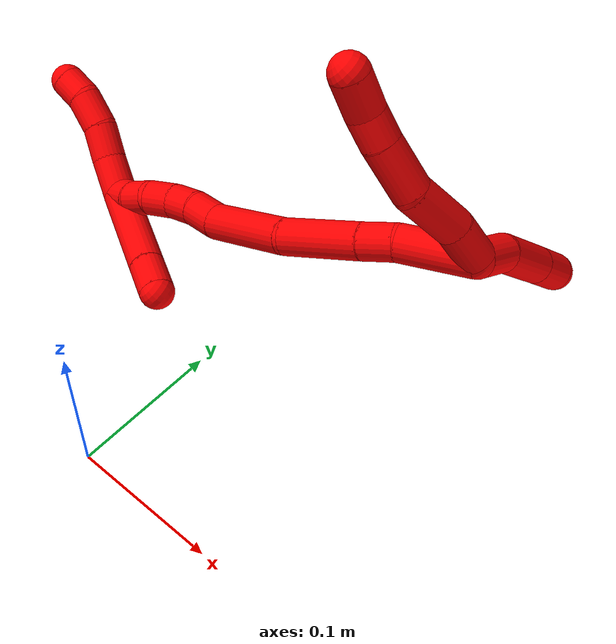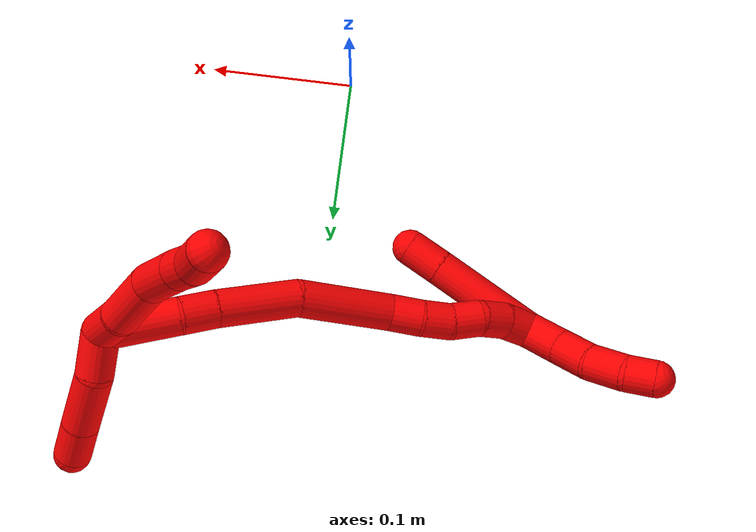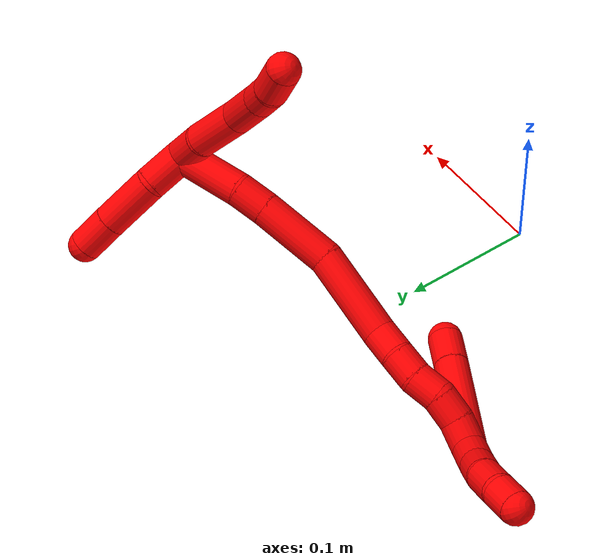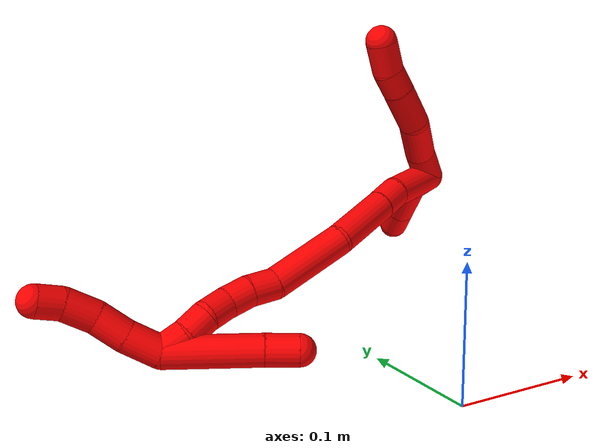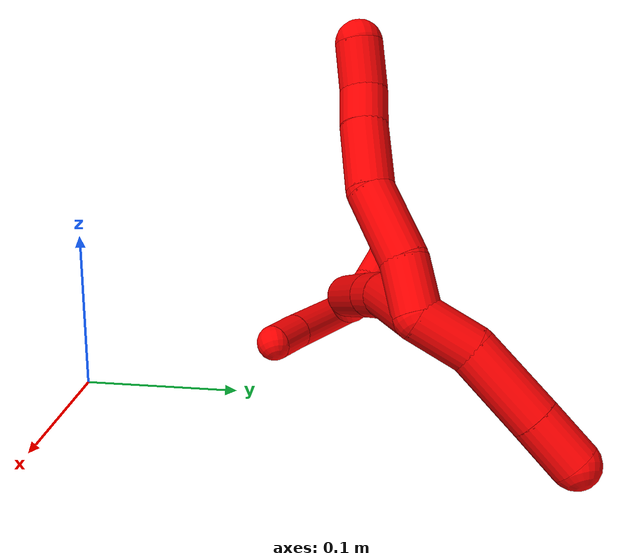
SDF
<sdf version="1.7">
 <world name="default">
  <model name="2">
   <static>0</static>
   <link name="2">
    <collision name="collision-cylinder-e_1_2_8">
     <pose>0.002032 -0.00251 -0.013766 2.96122 0.144218 1.34796</pose>
     <geometry><cylinder><radius>0.0125</radius><length>0.028279</length></cylinder></geometry>
     <surface>
      <friction><ode><mu>1.16</mu><mu2>1.16</mu2><slip1>0</slip1><slip2>0</slip2></ode></friction>
      <contact><ode><kp>1e+06</kp><kd>1</kd><max_vel>0</max_vel><min_depth>0.001</min_depth></ode></contact>
     </surface>
    </collision>
    <visual name="visual-cylinder-e_1_2_8">
     <pose>0.002032 -0.00251 -0.013766 2.96122 0.144218 1.34796</pose>
     <geometry><cylinder><radius>0.0125</radius><length>0.028279</length></cylinder></geometry>
     <material><ambient>1 0 0 1</ambient></material>
    </visual>
    <collision name="collision-cylinder-e_2_8_9">
     <pose>0.008774 -0.004752 -0.04711 -3.12786 0.236068 -3.02596</pose>
     <geometry><cylinder><radius>0.0125</radius><length>0.040278</length></cylinder></geometry>
     <surface>
      <friction><ode><mu>1.16</mu><mu2>1.16</mu2><slip1>0</slip1><slip2>0</slip2></ode></friction>
      <contact><ode><kp>1e+06</kp><kd>1</kd><max_vel>0</max_vel><min_depth>0.001</min_depth></ode></contact>
     </surface>
    </collision>
    <visual name="visual-cylinder-e_2_8_9">
     <pose>0.008774 -0.004752 -0.04711 -3.12786 0.236068 -3.02596</pose>
     <geometry><cylinder><radius>0.0125</radius><length>0.040278</length></cylinder></geometry>
     <material><ambient>1 0 0 1</ambient></material>
    </visual>
    <collision name="collision-cylinder-e_3_9_10">
     <pose>0.014202 -0.00874 -0.083916 2.89933 0.040424 0.329122</pose>
     <geometry><cylinder><radius>0.0125</radius><length>0.035521</length></cylinder></geometry>
     <surface>
      <friction><ode><mu>1.16</mu><mu2>1.16</mu2><slip1>0</slip1><slip2>0</slip2></ode></friction>
      <contact><ode><kp>1e+06</kp><kd>1</kd><max_vel>0</max_vel><min_depth>0.001</min_depth></ode></contact>
     </surface>
    </collision>
    <visual name="visual-cylinder-e_3_9_10">
     <pose>0.014202 -0.00874 -0.083916 2.89933 0.040424 0.329122</pose>
     <geometry><cylinder><radius>0.0125</radius><length>0.035521</length></cylinder></geometry>
     <material><ambient>1 0 0 1</ambient></material>
    </visual>
    <collision name="collision-cylinder-e_4_10_11">
     <pose>0.014942 -0.016147 -0.11065 2.82172 0.00223 0.013823</pose>
     <geometry><cylinder><radius>0.0125</radius><length>0.020029</length></cylinder></geometry>
     <surface>
      <friction><ode><mu>1.16</mu><mu2>1.16</mu2><slip1>0</slip1><slip2>0</slip2></ode></friction>
      <contact><ode><kp>1e+06</kp><kd>1</kd><max_vel>0</max_vel><min_depth>0.001</min_depth></ode></contact>
     </surface>
    </collision>
    <visual name="visual-cylinder-e_4_10_11">
     <pose>0.014942 -0.016147 -0.11065 2.82172 0.00223 0.013823</pose>
     <geometry><cylinder><radius>0.0125</radius><length>0.020029</length></cylinder></geometry>
     <material><ambient>1 0 0 1</ambient></material>
    </visual>
    <collision name="collision-cylinder-e_5_11_6">
     <pose>0.017783 -0.024085 -0.13185 2.75289 0.219469 1.02059</pose>
     <geometry><cylinder><radius>0.0125</radius><length>0.025893</length></cylinder></geometry>
     <surface>
      <friction><ode><mu>1.16</mu><mu2>1.16</mu2><slip1>0</slip1><slip2>0</slip2></ode></friction>
      <contact><ode><kp>1e+06</kp><kd>1</kd><max_vel>0</max_vel><min_depth>0.001</min_depth></ode></contact>
     </surface>
    </collision>
    <visual name="visual-cylinder-e_5_11_6">
     <pose>0.017783 -0.024085 -0.13185 2.75289 0.219469 1.02059</pose>
     <geometry><cylinder><radius>0.0125</radius><length>0.025893</length></cylinder></geometry>
     <material><ambient>1 0 0 1</ambient></material>
    </visual>
    <collision name="collision-cylinder-e_1_2_12">
     <pose>-0.010221 -0.005365 0.009618 0.508796 -0.748149 -0.203451</pose>
     <geometry><cylinder><radius>0.0125</radius><length>0.03005</length></cylinder></geometry>
     <surface>
      <friction><ode><mu>1.16</mu><mu2>1.16</mu2><slip1>0</slip1><slip2>0</slip2></ode></friction>
      <contact><ode><kp>1e+06</kp><kd>1</kd><max_vel>0</max_vel><min_depth>0.001</min_depth></ode></contact>
     </surface>
    </collision>
    <visual name="visual-cylinder-e_1_2_12">
     <pose>-0.010221 -0.005365 0.009618 0.508796 -0.748149 -0.203451</pose>
     <geometry><cylinder><radius>0.0125</radius><length>0.03005</length></cylinder></geometry>
     <material><ambient>1 0 0 1</ambient></material>
    </visual>
    <collision name="collision-cylinder-e_2_12_13">
     <pose>-0.032308 -0.013853 0.036649 0.177503 -0.590749 -0.054139</pose>
     <geometry><cylinder><radius>0.0125</radius><length>0.042605</length></cylinder></geometry>
     <surface>
      <friction><ode><mu>1.16</mu><mu2>1.16</mu2><slip1>0</slip1><slip2>0</slip2></ode></friction>
      <contact><ode><kp>1e+06</kp><kd>1</kd><max_vel>0</max_vel><min_depth>0.001</min_depth></ode></contact>
     </surface>
    </collision>
    <visual name="visual-cylinder-e_2_12_13">
     <pose>-0.032308 -0.013853 0.036649 0.177503 -0.590749 -0.054139</pose>
     <geometry><cylinder><radius>0.0125</radius><length>0.042605</length></cylinder></geometry>
     <material><ambient>1 0 0 1</ambient></material>
    </visual>
    <collision name="collision-cylinder-e_3_13_5">
     <pose>-0.051889 -0.018768 0.065208 0.159372 -0.599649 -0.049363</pose>
     <geometry><cylinder><radius>0.0125</radius><length>0.027345</length></cylinder></geometry>
     <surface>
      <friction><ode><mu>1.16</mu><mu2>1.16</mu2><slip1>0</slip1><slip2>0</slip2></ode></friction>
      <contact><ode><kp>1e+06</kp><kd>1</kd><max_vel>0</max_vel><min_depth>0.001</min_depth></ode></contact>
     </surface>
    </collision>
    <visual name="visual-cylinder-e_3_13_5">
     <pose>-0.051889 -0.018768 0.065208 0.159372 -0.599649 -0.049363</pose>
     <geometry><cylinder><radius>0.0125</radius><length>0.027345</length></cylinder></geometry>
     <material><ambient>1 0 0 1</ambient></material>
    </visual>
    <collision name="collision-cylinder-e_1_2_14">
     <pose>-0.011738 0.014598 -0.016617 -2.4208 -0.487907 1.16744</pose>
     <geometry><cylinder><radius>0.0125</radius><length>0.050081</length></cylinder></geometry>
     <surface>
      <friction><ode><mu>1.16</mu><mu2>1.16</mu2><slip1>0</slip1><slip2>0</slip2></ode></friction>
      <contact><ode><kp>1e+06</kp><kd>1</kd><max_vel>0</max_vel><min_depth>0.001</min_depth></ode></contact>
     </surface>
    </collision>
    <visual name="visual-cylinder-e_1_2_14">
     <pose>-0.011738 0.014598 -0.016617 -2.4208 -0.487907 1.16744</pose>
     <geometry><cylinder><radius>0.0125</radius><length>0.050081</length></cylinder></geometry>
     <material><ambient>1 0 0 1</ambient></material>
    </visual>
    <collision name="collision-cylinder-e_2_14_15">
     <pose>-0.029354 0.037452 -0.039175 -2.19448 -0.523966 0.964169</pose>
     <geometry><cylinder><radius>0.0125</radius><length>0.023493</length></cylinder></geometry>
     <surface>
      <friction><ode><mu>1.16</mu><mu2>1.16</mu2><slip1>0</slip1><slip2>0</slip2></ode></friction>
      <contact><ode><kp>1e+06</kp><kd>1</kd><max_vel>0</max_vel><min_depth>0.001</min_depth></ode></contact>
     </surface>
    </collision>
    <visual name="visual-cylinder-e_2_14_15">
     <pose>-0.029354 0.037452 -0.039175 -2.19448 -0.523966 0.964169</pose>
     <geometry><cylinder><radius>0.0125</radius><length>0.023493</length></cylinder></geometry>
     <material><ambient>1 0 0 1</ambient></material>
    </visual>
    <collision name="collision-cylinder-e_3_15_16">
     <pose>-0.05052 0.064524 -0.058666 -2.19495 -0.582923 1.05978</pose>
     <geometry><cylinder><radius>0.0125</radius><length>0.05555</length></cylinder></geometry>
     <surface>
      <friction><ode><mu>1.16</mu><mu2>1.16</mu2><slip1>0</slip1><slip2>0</slip2></ode></friction>
      <contact><ode><kp>1e+06</kp><kd>1</kd><max_vel>0</max_vel><min_depth>0.001</min_depth></ode></contact>
     </surface>
    </collision>
    <visual name="visual-cylinder-e_3_15_16">
     <pose>-0.05052 0.064524 -0.058666 -2.19495 -0.582923 1.05978</pose>
     <geometry><cylinder><radius>0.0125</radius><length>0.05555</length></cylinder></geometry>
     <material><ambient>1 0 0 1</ambient></material>
    </visual>
    <collision name="collision-cylinder-e_4_16_17">
     <pose>-0.090467 0.100983 -0.084453 -2.17716 -0.854396 1.43166</pose>
     <geometry><cylinder><radius>0.0125</radius><length>0.065391</length></cylinder></geometry>
     <surface>
      <friction><ode><mu>1.16</mu><mu2>1.16</mu2><slip1>0</slip1><slip2>0</slip2></ode></friction>
      <contact><ode><kp>1e+06</kp><kd>1</kd><max_vel>0</max_vel><min_depth>0.001</min_depth></ode></contact>
     </surface>
    </collision>
    <visual name="visual-cylinder-e_4_16_17">
     <pose>-0.090467 0.100983 -0.084453 -2.17716 -0.854396 1.43166</pose>
     <geometry><cylinder><radius>0.0125</radius><length>0.065391</length></cylinder></geometry>
     <material><ambient>1 0 0 1</ambient></material>
    </visual>
    <collision name="collision-cylinder-e_5_17_18">
     <pose>-0.123263 0.122218 -0.103143 -2.63368 -0.833765 2.08127</pose>
     <geometry><cylinder><radius>0.0125</radius><length>0.02198</length></cylinder></geometry>
     <surface>
      <friction><ode><mu>1.16</mu><mu2>1.16</mu2><slip1>0</slip1><slip2>0</slip2></ode></friction>
      <contact><ode><kp>1e+06</kp><kd>1</kd><max_vel>0</max_vel><min_depth>0.001</min_depth></ode></contact>
     </surface>
    </collision>
    <visual name="visual-cylinder-e_5_17_18">
     <pose>-0.123263 0.122218 -0.103143 -2.63368 -0.833765 2.08127</pose>
     <geometry><cylinder><radius>0.0125</radius><length>0.02198</length></cylinder></geometry>
     <material><ambient>1 0 0 1</ambient></material>
    </visual>
    <collision name="collision-cylinder-e_6_18_19">
     <pose>-0.138945 0.130831 -0.114617 -2.35616 -0.815663 1.61291</pose>
     <geometry><cylinder><radius>0.0125</radius><length>0.020719</length></cylinder></geometry>
     <surface>
      <friction><ode><mu>1.16</mu><mu2>1.16</mu2><slip1>0</slip1><slip2>0</slip2></ode></friction>
      <contact><ode><kp>1e+06</kp><kd>1</kd><max_vel>0</max_vel><min_depth>0.001</min_depth></ode></contact>
     </surface>
    </collision>
    <visual name="visual-cylinder-e_6_18_19">
     <pose>-0.138945 0.130831 -0.114617 -2.35616 -0.815663 1.61291</pose>
     <geometry><cylinder><radius>0.0125</radius><length>0.020719</length></cylinder></geometry>
     <material><ambient>1 0 0 1</ambient></material>
    </visual>
    <collision name="collision-cylinder-e_7_19_20">
     <pose>-0.152299 0.142328 -0.125444 -2.30173 -0.588949 1.19337</pose>
     <geometry><cylinder><radius>0.0125</radius><length>0.020921</length></cylinder></geometry>
     <surface>
      <friction><ode><mu>1.16</mu><mu2>1.16</mu2><slip1>0</slip1><slip2>0</slip2></ode></friction>
      <contact><ode><kp>1e+06</kp><kd>1</kd><max_vel>0</max_vel><min_depth>0.001</min_depth></ode></contact>
     </surface>
    </collision>
    <visual name="visual-cylinder-e_7_19_20">
     <pose>-0.152299 0.142328 -0.125444 -2.30173 -0.588949 1.19337</pose>
     <geometry><cylinder><radius>0.0125</radius><length>0.020921</length></cylinder></geometry>
     <material><ambient>1 0 0 1</ambient></material>
    </visual>
    <collision name="collision-cylinder-e_8_20_21">
     <pose>-0.165389 0.155422 -0.133992 -1.96354 -0.793457 1.1201</pose>
     <geometry><cylinder><radius>0.0125</radius><length>0.020426</length></cylinder></geometry>
     <surface>
      <friction><ode><mu>1.16</mu><mu2>1.16</mu2><slip1>0</slip1><slip2>0</slip2></ode></friction>
      <contact><ode><kp>1e+06</kp><kd>1</kd><max_vel>0</max_vel><min_depth>0.001</min_depth></ode></contact>
     </surface>
    </collision>
    <visual name="visual-cylinder-e_8_20_21">
     <pose>-0.165389 0.155422 -0.133992 -1.96354 -0.793457 1.1201</pose>
     <geometry><cylinder><radius>0.0125</radius><length>0.020426</length></cylinder></geometry>
     <material><ambient>1 0 0 1</ambient></material>
    </visual>
    <collision name="collision-cylinder-e_9_21_1">
     <pose>-0.181809 0.167071 -0.139193 -2.02545 -1.02107 1.46248</pose>
     <geometry><cylinder><radius>0.0125</radius><length>0.021438</length></cylinder></geometry>
     <surface>
      <friction><ode><mu>1.16</mu><mu2>1.16</mu2><slip1>0</slip1><slip2>0</slip2></ode></friction>
      <contact><ode><kp>1e+06</kp><kd>1</kd><max_vel>0</max_vel><min_depth>0.001</min_depth></ode></contact>
     </surface>
    </collision>
    <visual name="visual-cylinder-e_9_21_1">
     <pose>-0.181809 0.167071 -0.139193 -2.02545 -1.02107 1.46248</pose>
     <geometry><cylinder><radius>0.0125</radius><length>0.021438</length></cylinder></geometry>
     <material><ambient>1 0 0 1</ambient></material>
    </visual>
    <collision name="collision-cylinder-e_1_1_22">
     <pose>-0.157782 0.175404 -0.124916 -0.194731 1.09575 -0.119059</pose>
     <geometry><cylinder><radius>0.0125</radius><length>0.074594</length></cylinder></geometry>
     <surface>
      <friction><ode><mu>1.16</mu><mu2>1.16</mu2><slip1>0</slip1><slip2>0</slip2></ode></friction>
      <contact><ode><kp>1e+06</kp><kd>1</kd><max_vel>0</max_vel><min_depth>0.001</min_depth></ode></contact>
     </surface>
    </collision>
    <visual name="visual-cylinder-e_1_1_22">
     <pose>-0.157782 0.175404 -0.124916 -0.194731 1.09575 -0.119059</pose>
     <geometry><cylinder><radius>0.0125</radius><length>0.074594</length></cylinder></geometry>
     <material><ambient>1 0 0 1</ambient></material>
    </visual>
    <collision name="collision-cylinder-e_2_22_4">
     <pose>-0.113502 0.180033 -0.102171 -0.217523 1.06508 -0.128524</pose>
     <geometry><cylinder><radius>0.0125</radius><length>0.025406</length></cylinder></geometry>
     <surface>
      <friction><ode><mu>1.16</mu><mu2>1.16</mu2><slip1>0</slip1><slip2>0</slip2></ode></friction>
      <contact><ode><kp>1e+06</kp><kd>1</kd><max_vel>0</max_vel><min_depth>0.001</min_depth></ode></contact>
     </surface>
    </collision>
    <visual name="visual-cylinder-e_2_22_4">
     <pose>-0.113502 0.180033 -0.102171 -0.217523 1.06508 -0.128524</pose>
     <geometry><cylinder><radius>0.0125</radius><length>0.025406</length></cylinder></geometry>
     <material><ambient>1 0 0 1</ambient></material>
    </visual>
    <collision name="collision-cylinder-e_1_1_23">
     <pose>-0.199362 0.167077 -0.151957 2.68783 -0.633089 -1.91375</pose>
     <geometry><cylinder><radius>0.0125</radius><length>0.028441</length></cylinder></geometry>
     <surface>
      <friction><ode><mu>1.16</mu><mu2>1.16</mu2><slip1>0</slip1><slip2>0</slip2></ode></friction>
      <contact><ode><kp>1e+06</kp><kd>1</kd><max_vel>0</max_vel><min_depth>0.001</min_depth></ode></contact>
     </surface>
    </collision>
    <visual name="visual-cylinder-e_1_1_23">
     <pose>-0.199362 0.167077 -0.151957 2.68783 -0.633089 -1.91375</pose>
     <geometry><cylinder><radius>0.0125</radius><length>0.028441</length></cylinder></geometry>
     <material><ambient>1 0 0 1</ambient></material>
    </visual>
    <collision name="collision-cylinder-e_2_23_24">
     <pose>-0.213919 0.156466 -0.171909 2.61677 -0.503658 -1.52777</pose>
     <geometry><cylinder><radius>0.0125</radius><length>0.025456</length></cylinder></geometry>
     <surface>
      <friction><ode><mu>1.16</mu><mu2>1.16</mu2><slip1>0</slip1><slip2>0</slip2></ode></friction>
      <contact><ode><kp>1e+06</kp><kd>1</kd><max_vel>0</max_vel><min_depth>0.001</min_depth></ode></contact>
     </surface>
    </collision>
    <visual name="visual-cylinder-e_2_23_24">
     <pose>-0.213919 0.156466 -0.171909 2.61677 -0.503658 -1.52777</pose>
     <geometry><cylinder><radius>0.0125</radius><length>0.025456</length></cylinder></geometry>
     <material><ambient>1 0 0 1</ambient></material>
    </visual>
    <collision name="collision-cylinder-e_3_24_25">
     <pose>-0.226916 0.14805 -0.192198 2.88167 -0.556731 -2.28372</pose>
     <geometry><cylinder><radius>0.0125</radius><length>0.025941</length></cylinder></geometry>
     <surface>
      <friction><ode><mu>1.16</mu><mu2>1.16</mu2><slip1>0</slip1><slip2>0</slip2></ode></friction>
      <contact><ode><kp>1e+06</kp><kd>1</kd><max_vel>0</max_vel><min_depth>0.001</min_depth></ode></contact>
     </surface>
    </collision>
    <visual name="visual-cylinder-e_3_24_25">
     <pose>-0.226916 0.14805 -0.192198 2.88167 -0.556731 -2.28372</pose>
     <geometry><cylinder><radius>0.0125</radius><length>0.025941</length></cylinder></geometry>
     <material><ambient>1 0 0 1</ambient></material>
    </visual>
    <collision name="collision-cylinder-e_4_25_3">
     <pose>-0.240027 0.145899 -0.210714 -3.05565 -0.669695 2.8957</pose>
     <geometry><cylinder><radius>0.0125</radius><length>0.020161</length></cylinder></geometry>
     <surface>
      <friction><ode><mu>1.16</mu><mu2>1.16</mu2><slip1>0</slip1><slip2>0</slip2></ode></friction>
      <contact><ode><kp>1e+06</kp><kd>1</kd><max_vel>0</max_vel><min_depth>0.001</min_depth></ode></contact>
     </surface>
    </collision>
    <visual name="visual-cylinder-e_4_25_3">
     <pose>-0.240027 0.145899 -0.210714 -3.05565 -0.669695 2.8957</pose>
     <geometry><cylinder><radius>0.0125</radius><length>0.020161</length></cylinder></geometry>
     <material><ambient>1 0 0 1</ambient></material>
    </visual>
    <collision name="collision-sphere-3">
     <pose>-0.246285 0.146577 -0.218588 0 -0 0</pose>
     <geometry><sphere><radius>0.0125</radius></sphere></geometry>
     <surface>
      <friction><ode><mu>1.16</mu><mu2>1.16</mu2><slip1>0</slip1><slip2>0</slip2></ode></friction>
      <contact><ode><kp>1e+06</kp><kd>1</kd><max_vel>0</max_vel><min_depth>0.001</min_depth></ode></contact>
     </surface>
    </collision>
    <visual name="visual-sphere-3">
     <pose>-0.246285 0.146577 -0.218588 0 -0 0</pose>
     <geometry><sphere><radius>0.0125</radius></sphere></geometry>
     <material><ambient>1 0 0 1</ambient></material>
    </visual>
    <collision name="collision-sphere-25">
     <pose>-0.23377 0.14522 -0.20284 0 -0 0</pose>
     <geometry><sphere><radius>0.0125</radius></sphere></geometry>
     <surface>
      <friction><ode><mu>1.16</mu><mu2>1.16</mu2><slip1>0</slip1><slip2>0</slip2></ode></friction>
      <contact><ode><kp>1e+06</kp><kd>1</kd><max_vel>0</max_vel><min_depth>0.001</min_depth></ode></contact>
     </surface>
    </collision>
    <visual name="visual-sphere-25">
     <pose>-0.23377 0.14522 -0.20284 0 -0 0</pose>
     <geometry><sphere><radius>0.0125</radius></sphere></geometry>
     <material><ambient>1 0 0 1</ambient></material>
    </visual>
    <collision name="collision-sphere-24">
     <pose>-0.220062 0.150881 -0.181556 0 -0 0</pose>
     <geometry><sphere><radius>0.0125</radius></sphere></geometry>
     <surface>
      <friction><ode><mu>1.16</mu><mu2>1.16</mu2><slip1>0</slip1><slip2>0</slip2></ode></friction>
      <contact><ode><kp>1e+06</kp><kd>1</kd><max_vel>0</max_vel><min_depth>0.001</min_depth></ode></contact>
     </surface>
    </collision>
    <visual name="visual-sphere-24">
     <pose>-0.220062 0.150881 -0.181556 0 -0 0</pose>
     <geometry><sphere><radius>0.0125</radius></sphere></geometry>
     <material><ambient>1 0 0 1</ambient></material>
    </visual>
    <collision name="collision-sphere-23">
     <pose>-0.207776 0.162052 -0.162262 0 -0 0</pose>
     <geometry><sphere><radius>0.0125</radius></sphere></geometry>
     <surface>
      <friction><ode><mu>1.16</mu><mu2>1.16</mu2><slip1>0</slip1><slip2>0</slip2></ode></friction>
      <contact><ode><kp>1e+06</kp><kd>1</kd><max_vel>0</max_vel><min_depth>0.001</min_depth></ode></contact>
     </surface>
    </collision>
    <visual name="visual-sphere-23">
     <pose>-0.207776 0.162052 -0.162262 0 -0 0</pose>
     <geometry><sphere><radius>0.0125</radius></sphere></geometry>
     <material><ambient>1 0 0 1</ambient></material>
    </visual>
    <collision name="collision-sphere-4">
     <pose>-0.102389 0.181361 -0.096162 0 -0 0</pose>
     <geometry><sphere><radius>0.0125</radius></sphere></geometry>
     <surface>
      <friction><ode><mu>1.16</mu><mu2>1.16</mu2><slip1>0</slip1><slip2>0</slip2></ode></friction>
      <contact><ode><kp>1e+06</kp><kd>1</kd><max_vel>0</max_vel><min_depth>0.001</min_depth></ode></contact>
     </surface>
    </collision>
    <visual name="visual-sphere-4">
     <pose>-0.102389 0.181361 -0.096162 0 -0 0</pose>
     <geometry><sphere><radius>0.0125</radius></sphere></geometry>
     <material><ambient>1 0 0 1</ambient></material>
    </visual>
    <collision name="collision-sphere-22">
     <pose>-0.124615 0.178705 -0.10818 0 -0 0</pose>
     <geometry><sphere><radius>0.0125</radius></sphere></geometry>
     <surface>
      <friction><ode><mu>1.16</mu><mu2>1.16</mu2><slip1>0</slip1><slip2>0</slip2></ode></friction>
      <contact><ode><kp>1e+06</kp><kd>1</kd><max_vel>0</max_vel><min_depth>0.001</min_depth></ode></contact>
     </surface>
    </collision>
    <visual name="visual-sphere-22">
     <pose>-0.124615 0.178705 -0.10818 0 -0 0</pose>
     <geometry><sphere><radius>0.0125</radius></sphere></geometry>
     <material><ambient>1 0 0 1</ambient></material>
    </visual>
    <collision name="collision-sphere-1">
     <pose>-0.190949 0.172103 -0.141653 0 -0 0</pose>
     <geometry><sphere><radius>0.0125</radius></sphere></geometry>
     <surface>
      <friction><ode><mu>1.16</mu><mu2>1.16</mu2><slip1>0</slip1><slip2>0</slip2></ode></friction>
      <contact><ode><kp>1e+06</kp><kd>1</kd><max_vel>0</max_vel><min_depth>0.001</min_depth></ode></contact>
     </surface>
    </collision>
    <visual name="visual-sphere-1">
     <pose>-0.190949 0.172103 -0.141653 0 -0 0</pose>
     <geometry><sphere><radius>0.0125</radius></sphere></geometry>
     <material><ambient>1 0 0 1</ambient></material>
    </visual>
    <collision name="collision-sphere-21">
     <pose>-0.172669 0.16204 -0.136734 0 -0 0</pose>
     <geometry><sphere><radius>0.0125</radius></sphere></geometry>
     <surface>
      <friction><ode><mu>1.16</mu><mu2>1.16</mu2><slip1>0</slip1><slip2>0</slip2></ode></friction>
      <contact><ode><kp>1e+06</kp><kd>1</kd><max_vel>0</max_vel><min_depth>0.001</min_depth></ode></contact>
     </surface>
    </collision>
    <visual name="visual-sphere-21">
     <pose>-0.172669 0.16204 -0.136734 0 -0 0</pose>
     <geometry><sphere><radius>0.0125</radius></sphere></geometry>
     <material><ambient>1 0 0 1</ambient></material>
    </visual>
    <collision name="collision-sphere-6">
     <pose>0.020602 -0.028873 -0.143544 0 -0 0</pose>
     <geometry><sphere><radius>0.0125</radius></sphere></geometry>
     <surface>
      <friction><ode><mu>1.16</mu><mu2>1.16</mu2><slip1>0</slip1><slip2>0</slip2></ode></friction>
      <contact><ode><kp>1e+06</kp><kd>1</kd><max_vel>0</max_vel><min_depth>0.001</min_depth></ode></contact>
     </surface>
    </collision>
    <visual name="visual-sphere-6">
     <pose>0.020602 -0.028873 -0.143544 0 -0 0</pose>
     <geometry><sphere><radius>0.0125</radius></sphere></geometry>
     <material><ambient>1 0 0 1</ambient></material>
    </visual>
    <collision name="collision-sphere-11">
     <pose>0.014965 -0.019296 -0.120157 0 -0 0</pose>
     <geometry><sphere><radius>0.0125</radius></sphere></geometry>
     <surface>
      <friction><ode><mu>1.16</mu><mu2>1.16</mu2><slip1>0</slip1><slip2>0</slip2></ode></friction>
      <contact><ode><kp>1e+06</kp><kd>1</kd><max_vel>0</max_vel><min_depth>0.001</min_depth></ode></contact>
     </surface>
    </collision>
    <visual name="visual-sphere-11">
     <pose>0.014965 -0.019296 -0.120157 0 -0 0</pose>
     <geometry><sphere><radius>0.0125</radius></sphere></geometry>
     <material><ambient>1 0 0 1</ambient></material>
    </visual>
    <collision name="collision-sphere-10">
     <pose>0.01492 -0.012998 -0.101144 0 -0 0</pose>
     <geometry><sphere><radius>0.0125</radius></sphere></geometry>
     <surface>
      <friction><ode><mu>1.16</mu><mu2>1.16</mu2><slip1>0</slip1><slip2>0</slip2></ode></friction>
      <contact><ode><kp>1e+06</kp><kd>1</kd><max_vel>0</max_vel><min_depth>0.001</min_depth></ode></contact>
     </surface>
    </collision>
    <visual name="visual-sphere-10">
     <pose>0.01492 -0.012998 -0.101144 0 -0 0</pose>
     <geometry><sphere><radius>0.0125</radius></sphere></geometry>
     <material><ambient>1 0 0 1</ambient></material>
    </visual>
    <collision name="collision-sphere-9">
     <pose>0.013485 -0.004483 -0.066689 0 -0 0</pose>
     <geometry><sphere><radius>0.0125</radius></sphere></geometry>
     <surface>
      <friction><ode><mu>1.16</mu><mu2>1.16</mu2><slip1>0</slip1><slip2>0</slip2></ode></friction>
      <contact><ode><kp>1e+06</kp><kd>1</kd><max_vel>0</max_vel><min_depth>0.001</min_depth></ode></contact>
     </surface>
    </collision>
    <visual name="visual-sphere-9">
     <pose>0.013485 -0.004483 -0.066689 0 -0 0</pose>
     <geometry><sphere><radius>0.0125</radius></sphere></geometry>
     <material><ambient>1 0 0 1</ambient></material>
    </visual>
    <collision name="collision-sphere-2">
     <geometry><sphere><radius>0.0125</radius></sphere></geometry>
     <surface>
      <friction><ode><mu>1.16</mu><mu2>1.16</mu2><slip1>0</slip1><slip2>0</slip2></ode></friction>
      <contact><ode><kp>1e+06</kp><kd>1</kd><max_vel>0</max_vel><min_depth>0.001</min_depth></ode></contact>
     </surface>
    </collision>
    <visual name="visual-sphere-2">
     <geometry><sphere><radius>0.0125</radius></sphere></geometry>
     <material><ambient>1 0 0 1</ambient></material>
    </visual>
    <collision name="collision-sphere-19">
     <pose>-0.146488 0.135852 -0.119638 0 -0 0</pose>
     <geometry><sphere><radius>0.0125</radius></sphere></geometry>
     <surface>
      <friction><ode><mu>1.16</mu><mu2>1.16</mu2><slip1>0</slip1><slip2>0</slip2></ode></friction>
      <contact><ode><kp>1e+06</kp><kd>1</kd><max_vel>0</max_vel><min_depth>0.001</min_depth></ode></contact>
     </surface>
    </collision>
    <visual name="visual-sphere-19">
     <pose>-0.146488 0.135852 -0.119638 0 -0 0</pose>
     <geometry><sphere><radius>0.0125</radius></sphere></geometry>
     <material><ambient>1 0 0 1</ambient></material>
    </visual>
    <collision name="collision-sphere-8">
     <pose>0.004064 -0.005021 -0.027531 0 -0 0</pose>
     <geometry><sphere><radius>0.0125</radius></sphere></geometry>
     <surface>
      <friction><ode><mu>1.16</mu><mu2>1.16</mu2><slip1>0</slip1><slip2>0</slip2></ode></friction>
      <contact><ode><kp>1e+06</kp><kd>1</kd><max_vel>0</max_vel><min_depth>0.001</min_depth></ode></contact>
     </surface>
    </collision>
    <visual name="visual-sphere-8">
     <pose>0.004064 -0.005021 -0.027531 0 -0 0</pose>
     <geometry><sphere><radius>0.0125</radius></sphere></geometry>
     <material><ambient>1 0 0 1</ambient></material>
    </visual>
    <collision name="collision-sphere-12">
     <pose>-0.020442 -0.010729 0.019235 0 -0 0</pose>
     <geometry><sphere><radius>0.0125</radius></sphere></geometry>
     <surface>
      <friction><ode><mu>1.16</mu><mu2>1.16</mu2><slip1>0</slip1><slip2>0</slip2></ode></friction>
      <contact><ode><kp>1e+06</kp><kd>1</kd><max_vel>0</max_vel><min_depth>0.001</min_depth></ode></contact>
     </surface>
    </collision>
    <visual name="visual-sphere-12">
     <pose>-0.020442 -0.010729 0.019235 0 -0 0</pose>
     <geometry><sphere><radius>0.0125</radius></sphere></geometry>
     <material><ambient>1 0 0 1</ambient></material>
    </visual>
    <collision name="collision-sphere-13">
     <pose>-0.044173 -0.016977 0.054063 0 -0 0</pose>
     <geometry><sphere><radius>0.0125</radius></sphere></geometry>
     <surface>
      <friction><ode><mu>1.16</mu><mu2>1.16</mu2><slip1>0</slip1><slip2>0</slip2></ode></friction>
      <contact><ode><kp>1e+06</kp><kd>1</kd><max_vel>0</max_vel><min_depth>0.001</min_depth></ode></contact>
     </surface>
    </collision>
    <visual name="visual-sphere-13">
     <pose>-0.044173 -0.016977 0.054063 0 -0 0</pose>
     <geometry><sphere><radius>0.0125</radius></sphere></geometry>
     <material><ambient>1 0 0 1</ambient></material>
    </visual>
    <collision name="collision-sphere-5">
     <pose>-0.059605 -0.020559 0.076352 0 -0 0</pose>
     <geometry><sphere><radius>0.0125</radius></sphere></geometry>
     <surface>
      <friction><ode><mu>1.16</mu><mu2>1.16</mu2><slip1>0</slip1><slip2>0</slip2></ode></friction>
      <contact><ode><kp>1e+06</kp><kd>1</kd><max_vel>0</max_vel><min_depth>0.001</min_depth></ode></contact>
     </surface>
    </collision>
    <visual name="visual-sphere-5">
     <pose>-0.059605 -0.020559 0.076352 0 -0 0</pose>
     <geometry><sphere><radius>0.0125</radius></sphere></geometry>
     <material><ambient>1 0 0 1</ambient></material>
    </visual>
    <collision name="collision-sphere-14">
     <pose>-0.023477 0.029196 -0.033235 0 -0 0</pose>
     <geometry><sphere><radius>0.0125</radius></sphere></geometry>
     <surface>
      <friction><ode><mu>1.16</mu><mu2>1.16</mu2><slip1>0</slip1><slip2>0</slip2></ode></friction>
      <contact><ode><kp>1e+06</kp><kd>1</kd><max_vel>0</max_vel><min_depth>0.001</min_depth></ode></contact>
     </surface>
    </collision>
    <visual name="visual-sphere-14">
     <pose>-0.023477 0.029196 -0.033235 0 -0 0</pose>
     <geometry><sphere><radius>0.0125</radius></sphere></geometry>
     <material><ambient>1 0 0 1</ambient></material>
    </visual>
    <collision name="collision-sphere-15">
     <pose>-0.035231 0.045707 -0.045115 0 -0 0</pose>
     <geometry><sphere><radius>0.0125</radius></sphere></geometry>
     <surface>
      <friction><ode><mu>1.16</mu><mu2>1.16</mu2><slip1>0</slip1><slip2>0</slip2></ode></friction>
      <contact><ode><kp>1e+06</kp><kd>1</kd><max_vel>0</max_vel><min_depth>0.001</min_depth></ode></contact>
     </surface>
    </collision>
    <visual name="visual-sphere-15">
     <pose>-0.035231 0.045707 -0.045115 0 -0 0</pose>
     <geometry><sphere><radius>0.0125</radius></sphere></geometry>
     <material><ambient>1 0 0 1</ambient></material>
    </visual>
    <collision name="collision-sphere-16">
     <pose>-0.065809 0.08334 -0.072217 0 -0 0</pose>
     <geometry><sphere><radius>0.0125</radius></sphere></geometry>
     <surface>
      <friction><ode><mu>1.16</mu><mu2>1.16</mu2><slip1>0</slip1><slip2>0</slip2></ode></friction>
      <contact><ode><kp>1e+06</kp><kd>1</kd><max_vel>0</max_vel><min_depth>0.001</min_depth></ode></contact>
     </surface>
    </collision>
    <visual name="visual-sphere-16">
     <pose>-0.065809 0.08334 -0.072217 0 -0 0</pose>
     <geometry><sphere><radius>0.0125</radius></sphere></geometry>
     <material><ambient>1 0 0 1</ambient></material>
    </visual>
    <collision name="collision-sphere-17">
     <pose>-0.115125 0.118625 -0.096689 0 -0 0</pose>
     <geometry><sphere><radius>0.0125</radius></sphere></geometry>
     <surface>
      <friction><ode><mu>1.16</mu><mu2>1.16</mu2><slip1>0</slip1><slip2>0</slip2></ode></friction>
      <contact><ode><kp>1e+06</kp><kd>1</kd><max_vel>0</max_vel><min_depth>0.001</min_depth></ode></contact>
     </surface>
    </collision>
    <visual name="visual-sphere-17">
     <pose>-0.115125 0.118625 -0.096689 0 -0 0</pose>
     <geometry><sphere><radius>0.0125</radius></sphere></geometry>
     <material><ambient>1 0 0 1</ambient></material>
    </visual>
    <collision name="collision-sphere-18">
     <pose>-0.131401 0.12581 -0.109597 0 -0 0</pose>
     <geometry><sphere><radius>0.0125</radius></sphere></geometry>
     <surface>
      <friction><ode><mu>1.16</mu><mu2>1.16</mu2><slip1>0</slip1><slip2>0</slip2></ode></friction>
      <contact><ode><kp>1e+06</kp><kd>1</kd><max_vel>0</max_vel><min_depth>0.001</min_depth></ode></contact>
     </surface>
    </collision>
    <visual name="visual-sphere-18">
     <pose>-0.131401 0.12581 -0.109597 0 -0 0</pose>
     <geometry><sphere><radius>0.0125</radius></sphere></geometry>
     <material><ambient>1 0 0 1</ambient></material>
    </visual>
    <collision name="collision-sphere-20">
     <pose>-0.15811 0.148804 -0.131251 0 -0 0</pose>
     <geometry><sphere><radius>0.0125</radius></sphere></geometry>
     <surface>
      <friction><ode><mu>1.16</mu><mu2>1.16</mu2><slip1>0</slip1><slip2>0</slip2></ode></friction>
      <contact><ode><kp>1e+06</kp><kd>1</kd><max_vel>0</max_vel><min_depth>0.001</min_depth></ode></contact>
     </surface>
    </collision>
    <visual name="visual-sphere-20">
     <pose>-0.15811 0.148804 -0.131251 0 -0 0</pose>
     <geometry><sphere><radius>0.0125</radius></sphere></geometry>
     <material><ambient>1 0 0 1</ambient></material>
    </visual>
    <inertial>
     <pose>-0.085296 0.076427 -0.080842 0 -0 0</pose>
     <mass>0.75</mass>
     <inertia><ixx>7e-05</ixx><ixy>0</ixy><ixz>0</ixz><iyy>0.000129</iyy><iyz>0</iyz><izz>-3.5e-05</izz></inertia>
    </inertial>
   </link>
   <pose>0.129546 0.213628 0.103244 -2.38767 -0.419756 -0.743417</pose>
  </model>
 </world>
</sdf>
